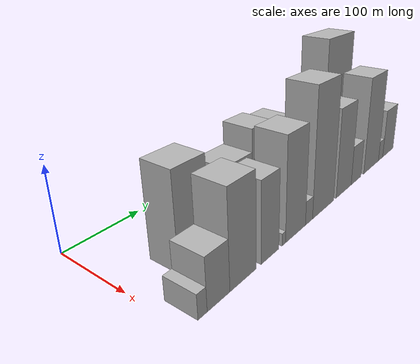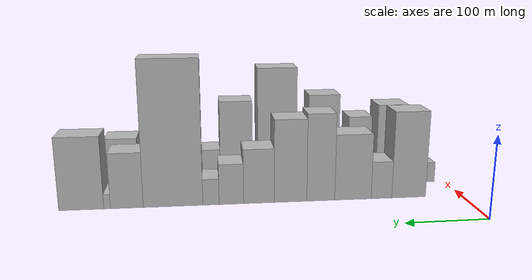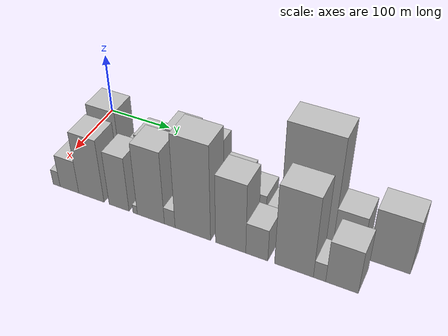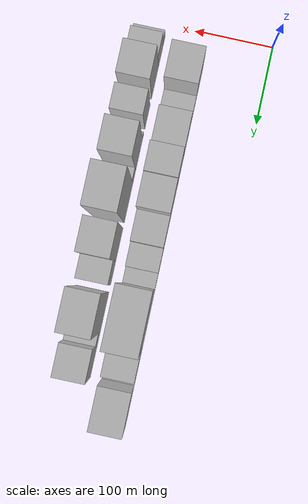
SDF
<sdf version="1.6">
 <world name="default">
  <model name="building_12">
   <static>1</static>
   <pose>100.0000 68.7548 0 0.000000 0.000000 0.000000</pose>
   <link name="link">
    <pose>0 0 55.50 0 0 0</pose>
    <collision name="collision"><geometry><box><size>40.0000 43.9248 111.0000</size></box></geometry></collision>
    <visual name="visual">
     <cast_shadows>0</cast_shadows>
     <geometry><box><size>40.0000 43.9248 111.0000</size></box></geometry>
     <material>
      <script>
       <uri>model://HANNAS_wall/materials/scripts</uri>
       <uri>model://HANNAS_wall/materials/textures</uri>
       <name>vrc/HANNAS_wall</name>
      </script>
     </material>
    </visual>
   </link>
  </model>
  <model name="building_13">
   <static>1</static>
   <pose>100.0000 103.9555 0 0.000000 0.000000 0.000000</pose>
   <link name="link">
    <pose>0 0 24.00 0 0 0</pose>
    <collision name="collision"><geometry><box><size>40.0000 26.4766 48.0000</size></box></geometry></collision>
    <visual name="visual">
     <cast_shadows>0</cast_shadows>
     <geometry><box><size>40.0000 26.4766 48.0000</size></box></geometry>
     <material>
      <script>
       <uri>model://HANNAS_wall/materials/scripts</uri>
       <uri>model://HANNAS_wall/materials/textures</uri>
       <name>vrc/HANNAS_wall</name>
      </script>
     </material>
    </visual>
   </link>
  </model>
  <model name="building_14">
   <static>1</static>
   <pose>100.0000 140.5373 0 0.000000 0.000000 0.000000</pose>
   <link name="link">
    <pose>0 0 42.00 0 0 0</pose>
    <collision name="collision"><geometry><box><size>40.0000 46.6870 84.0000</size></box></geometry></collision>
    <visual name="visual">
     <cast_shadows>0</cast_shadows>
     <geometry><box><size>40.0000 46.6870 84.0000</size></box></geometry>
     <material>
      <script>
       <uri>model://HANNAS_wall/materials/scripts</uri>
       <uri>model://HANNAS_wall/materials/textures</uri>
       <name>vrc/HANNAS_wall</name>
      </script>
     </material>
    </visual>
   </link>
  </model>
  <model name="building_15">
   <static>1</static>
   <pose>100.0000 181.5682 0 0.000000 0.000000 0.000000</pose>
   <link name="link">
    <pose>0 0 55.50 0 0 0</pose>
    <collision name="collision"><geometry><box><size>40.0000 35.3749 111.0000</size></box></geometry></collision>
    <visual name="visual">
     <cast_shadows>0</cast_shadows>
     <geometry><box><size>40.0000 35.3749 111.0000</size></box></geometry>
     <material>
      <script>
       <uri>model://HANNAS_wall/materials/scripts</uri>
       <uri>model://HANNAS_wall/materials/textures</uri>
       <name>vrc/HANNAS_wall</name>
      </script>
     </material>
    </visual>
   </link>
  </model>
  <model name="building_16">
   <static>1</static>
   <pose>100.0000 219.5520 0 0.000000 0.000000 0.000000</pose>
   <link name="link">
    <pose>0 0 52.50 0 0 0</pose>
    <collision name="collision"><geometry><box><size>40.0000 40.5926 105.0000</size></box></geometry></collision>
    <visual name="visual">
     <cast_shadows>0</cast_shadows>
     <geometry><box><size>40.0000 40.5926 105.0000</size></box></geometry>
     <material>
      <script>
       <uri>model://HANNAS_wall/materials/scripts</uri>
       <uri>model://HANNAS_wall/materials/textures</uri>
       <name>vrc/HANNAS_wall</name>
      </script>
     </material>
    </visual>
   </link>
  </model>
  <model name="building_17">
   <static>1</static>
   <pose>100.0000 258.8939 0 0.000000 0.000000 0.000000</pose>
   <link name="link">
    <pose>0 0 34.50 0 0 0</pose>
    <collision name="collision"><geometry><box><size>40.0000 38.0912 69.0000</size></box></geometry></collision>
    <visual name="visual">
     <cast_shadows>0</cast_shadows>
     <geometry><box><size>40.0000 38.0912 69.0000</size></box></geometry>
     <material>
      <script>
       <uri>model://HANNAS_wall/materials/scripts</uri>
       <uri>model://HANNAS_wall/materials/textures</uri>
       <name>vrc/HANNAS_wall</name>
      </script>
     </material>
    </visual>
   </link>
  </model>
  <model name="building_18">
   <static>1</static>
   <pose>100.0000 292.8784 0 0.000000 0.000000 0.000000</pose>
   <link name="link">
    <pose>0 0 25.50 0 0 0</pose>
    <collision name="collision"><geometry><box><size>40.0000 29.8777 51.0000</size></box></geometry></collision>
    <visual name="visual">
     <cast_shadows>0</cast_shadows>
     <geometry><box><size>40.0000 29.8777 51.0000</size></box></geometry>
     <material>
      <script>
       <uri>model://HANNAS_wall/materials/scripts</uri>
       <uri>model://HANNAS_wall/materials/textures</uri>
       <name>vrc/HANNAS_wall</name>
      </script>
     </material>
    </visual>
   </link>
  </model>
  <model name="building_19">
   <static>1</static>
   <pose>100.0000 317.6770 0 0.000000 0.000000 0.000000</pose>
   <link name="link">
    <pose>0 0 16.50 0 0 0</pose>
    <collision name="collision"><geometry><box><size>40.0000 19.7196 33.0000</size></box></geometry></collision>
    <visual name="visual">
     <cast_shadows>0</cast_shadows>
     <geometry><box><size>40.0000 19.7196 33.0000</size></box></geometry>
     <material>
      <script>
       <uri>model://HANNAS_wall/materials/scripts</uri>
       <uri>model://HANNAS_wall/materials/textures</uri>
       <name>vrc/HANNAS_wall</name>
      </script>
     </material>
    </visual>
   </link>
  </model>
  <model name="building_20">
   <static>1</static>
   <pose>100.0000 363.3611 0 0.000000 0.000000 0.000000</pose>
   <link name="link">
    <pose>0 0 90.00 0 0 0</pose>
    <collision name="collision"><geometry><box><size>40.0000 71.6485 180.0000</size></box></geometry></collision>
    <visual name="visual">
     <cast_shadows>0</cast_shadows>
     <geometry><box><size>40.0000 71.6485 180.0000</size></box></geometry>
     <material>
      <script>
       <uri>model://HANNAS_wall/materials/scripts</uri>
       <uri>model://HANNAS_wall/materials/textures</uri>
       <name>vrc/HANNAS_wall</name>
      </script>
     </material>
    </visual>
   </link>
  </model>
  <model name="building_21">
   <static>1</static>
   <pose>100.0000 418.6644 0 0.000000 0.000000 0.000000</pose>
   <link name="link">
    <pose>0 0 34.50 0 0 0</pose>
    <collision name="collision"><geometry><box><size>40.0000 38.9581 69.0000</size></box></geometry></collision>
    <visual name="visual">
     <cast_shadows>0</cast_shadows>
     <geometry><box><size>40.0000 38.9581 69.0000</size></box></geometry>
     <material>
      <script>
       <uri>model://HANNAS_wall/materials/scripts</uri>
       <uri>model://HANNAS_wall/materials/textures</uri>
       <name>vrc/HANNAS_wall</name>
      </script>
     </material>
    </visual>
   </link>
  </model>
  <model name="building_22">
   <static>1</static>
   <pose>100.0000 442.0077 0 0.000000 0.000000 0.000000</pose>
   <link name="link">
    <pose>0 0 9.00 0 0 0</pose>
    <collision name="collision"><geometry><box><size>40.0000 7.7286 18.0000</size></box></geometry></collision>
    <visual name="visual">
     <cast_shadows>0</cast_shadows>
     <geometry><box><size>40.0000 7.7286 18.0000</size></box></geometry>
     <material>
      <script>
       <uri>model://HANNAS_wall/materials/scripts</uri>
       <uri>model://HANNAS_wall/materials/textures</uri>
       <name>vrc/HANNAS_wall</name>
      </script>
     </material>
    </visual>
   </link>
  </model>
  <model name="building_23">
   <static>1</static>
   <pose>100.0000 472.1573 0 0.000000 0.000000 0.000000</pose>
   <link name="link">
    <pose>0 0 45.00 0 0 0</pose>
    <collision name="collision"><geometry><box><size>40.0000 52.5705 90.0000</size></box></geometry></collision>
    <visual name="visual">
     <cast_shadows>0</cast_shadows>
     <geometry><box><size>40.0000 52.5705 90.0000</size></box></geometry>
     <material>
      <script>
       <uri>model://HANNAS_wall/materials/scripts</uri>
       <uri>model://HANNAS_wall/materials/textures</uri>
       <name>vrc/HANNAS_wall</name>
      </script>
     </material>
    </visual>
   </link>
  </model>
  <model name="building_36">
   <static>1</static>
   <pose>155.0000 19.9528 0 0.000000 0.000000 0.000000</pose>
   <link name="link">
    <pose>0 0 13.50 0 0 0</pose>
    <collision name="collision"><geometry><box><size>40.0000 11.4931 27.0000</size></box></geometry></collision>
    <visual name="visual">
     <cast_shadows>0</cast_shadows>
     <geometry><box><size>40.0000 11.4931 27.0000</size></box></geometry>
     <material>
      <script>
       <uri>model://HANNAS_wall/materials/scripts</uri>
       <uri>model://HANNAS_wall/materials/textures</uri>
       <name>vrc/HANNAS_wall</name>
      </script>
     </material>
    </visual>
   </link>
  </model>
  <model name="building_37">
   <static>1</static>
   <pose>155.0000 40.9216 0 0.000000 0.000000 0.000000</pose>
   <link name="link">
    <pose>0 0 28.50 0 0 0</pose>
    <collision name="collision"><geometry><box><size>40.0000 30.4445 57.0000</size></box></geometry></collision>
    <visual name="visual">
     <cast_shadows>0</cast_shadows>
     <geometry><box><size>40.0000 30.4445 57.0000</size></box></geometry>
     <material>
      <script>
       <uri>model://HANNAS_wall/materials/scripts</uri>
       <uri>model://HANNAS_wall/materials/textures</uri>
       <name>vrc/HANNAS_wall</name>
      </script>
     </material>
    </visual>
   </link>
  </model>
  <model name="building_38">
   <static>1</static>
   <pose>155.0000 76.2373 0 0.000000 0.000000 0.000000</pose>
   <link name="link">
    <pose>0 0 54.00 0 0 0</pose>
    <collision name="collision"><geometry><box><size>40.0000 40.1870 108.0000</size></box></geometry></collision>
    <visual name="visual">
     <cast_shadows>0</cast_shadows>
     <geometry><box><size>40.0000 40.1870 108.0000</size></box></geometry>
     <material>
      <script>
       <uri>model://HANNAS_wall/materials/scripts</uri>
       <uri>model://HANNAS_wall/materials/textures</uri>
       <name>vrc/HANNAS_wall</name>
      </script>
     </material>
    </visual>
   </link>
  </model>
  <model name="building_39">
   <static>1</static>
   <pose>155.0000 119.8087 0 0.000000 0.000000 0.000000</pose>
   <link name="link">
    <pose>0 0 46.50 0 0 0</pose>
    <collision name="collision"><geometry><box><size>40.0000 30.9559 93.0000</size></box></geometry></collision>
    <visual name="visual">
     <cast_shadows>0</cast_shadows>
     <geometry><box><size>40.0000 30.9559 93.0000</size></box></geometry>
     <material>
      <script>
       <uri>model://HANNAS_wall/materials/scripts</uri>
       <uri>model://HANNAS_wall/materials/textures</uri>
       <name>vrc/HANNAS_wall</name>
      </script>
     </material>
    </visual>
   </link>
  </model>
  <model name="building_40">
   <static>1</static>
   <pose>155.0000 144.5600 0 0.000000 0.000000 0.000000</pose>
   <link name="link">
    <pose>0 0 7.50 0 0 0</pose>
    <collision name="collision"><geometry><box><size>40.0000 6.5467 15.0000</size></box></geometry></collision>
    <visual name="visual">
     <cast_shadows>0</cast_shadows>
     <geometry><box><size>40.0000 6.5467 15.0000</size></box></geometry>
     <material>
      <script>
       <uri>model://HANNAS_wall/materials/scripts</uri>
       <uri>model://HANNAS_wall/materials/textures</uri>
       <name>vrc/HANNAS_wall</name>
      </script>
     </material>
    </visual>
   </link>
  </model>
  <model name="building_41">
   <static>1</static>
   <pose>155.0000 168.2042 0 0.000000 0.000000 0.000000</pose>
   <link name="link">
    <pose>0 0 61.50 0 0 0</pose>
    <collision name="collision"><geometry><box><size>40.0000 40.7418 123.0000</size></box></geometry></collision>
    <visual name="visual">
     <cast_shadows>0</cast_shadows>
     <geometry><box><size>40.0000 40.7418 123.0000</size></box></geometry>
     <material>
      <script>
       <uri>model://HANNAS_wall/materials/scripts</uri>
       <uri>model://HANNAS_wall/materials/textures</uri>
       <name>vrc/HANNAS_wall</name>
      </script>
     </material>
    </visual>
   </link>
  </model>
  <model name="building_42">
   <static>1</static>
   <pose>155.0000 196.4175 0 0.000000 0.000000 0.000000</pose>
   <link name="link">
    <pose>0 0 15.00 0 0 0</pose>
    <collision name="collision"><geometry><box><size>40.0000 15.6848 30.0000</size></box></geometry></collision>
    <visual name="visual">
     <cast_shadows>0</cast_shadows>
     <geometry><box><size>40.0000 15.6848 30.0000</size></box></geometry>
     <material>
      <script>
       <uri>model://HANNAS_wall/materials/scripts</uri>
       <uri>model://HANNAS_wall/materials/textures</uri>
       <name>vrc/HANNAS_wall</name>
      </script>
     </material>
    </visual>
   </link>
  </model>
  <model name="building_43">
   <static>1</static>
   <pose>155.0000 229.8023 0 0.000000 0.000000 0.000000</pose>
   <link name="link">
    <pose>0 0 79.50 0 0 0</pose>
    <collision name="collision"><geometry><box><size>40.0000 51.0848 159.0000</size></box></geometry></collision>
    <visual name="visual">
     <cast_shadows>0</cast_shadows>
     <geometry><box><size>40.0000 51.0848 159.0000</size></box></geometry>
     <material>
      <script>
       <uri>model://HANNAS_wall/materials/scripts</uri>
       <uri>model://HANNAS_wall/materials/textures</uri>
       <name>vrc/HANNAS_wall</name>
      </script>
     </material>
    </visual>
   </link>
  </model>
  <model name="building_44">
   <static>1</static>
   <pose>155.0000 283.3261 0 0.000000 0.000000 0.000000</pose>
   <link name="link">
    <pose>0 0 58.50 0 0 0</pose>
    <collision name="collision"><geometry><box><size>40.0000 41.9628 117.0000</size></box></geometry></collision>
    <visual name="visual">
     <cast_shadows>0</cast_shadows>
     <geometry><box><size>40.0000 41.9628 117.0000</size></box></geometry>
     <material>
      <script>
       <uri>model://HANNAS_wall/materials/scripts</uri>
       <uri>model://HANNAS_wall/materials/textures</uri>
       <name>vrc/HANNAS_wall</name>
      </script>
     </material>
    </visual>
   </link>
  </model>
  <model name="building_45">
   <static>1</static>
   <pose>155.0000 319.2117 0 0.000000 0.000000 0.000000</pose>
   <link name="link">
    <pose>0 0 27.00 0 0 0</pose>
    <collision name="collision"><geometry><box><size>40.0000 29.8083 54.0000</size></box></geometry></collision>
    <visual name="visual">
     <cast_shadows>0</cast_shadows>
     <geometry><box><size>40.0000 29.8083 54.0000</size></box></geometry>
     <material>
      <script>
       <uri>model://HANNAS_wall/materials/scripts</uri>
       <uri>model://HANNAS_wall/materials/textures</uri>
       <name>vrc/HANNAS_wall</name>
      </script>
     </material>
    </visual>
   </link>
  </model>
  <model name="building_46">
   <static>1</static>
   <pose>155.0000 368.4703 0 0.000000 0.000000 0.000000</pose>
   <link name="link">
    <pose>0 0 67.50 0 0 0</pose>
    <collision name="collision"><geometry><box><size>40.0000 50.7090 135.0000</size></box></geometry></collision>
    <visual name="visual">
     <cast_shadows>0</cast_shadows>
     <geometry><box><size>40.0000 50.7090 135.0000</size></box></geometry>
     <material>
      <script>
       <uri>model://HANNAS_wall/materials/scripts</uri>
       <uri>model://HANNAS_wall/materials/textures</uri>
       <name>vrc/HANNAS_wall</name>
      </script>
     </material>
    </visual>
   </link>
  </model>
  <model name="building_47">
   <static>1</static>
   <pose>155.0000 401.6540 0 0.000000 0.000000 0.000000</pose>
   <link name="link">
    <pose>0 0 15.00 0 0 0</pose>
    <collision name="collision"><geometry><box><size>40.0000 15.6585 30.0000</size></box></geometry></collision>
    <visual name="visual">
     <cast_shadows>0</cast_shadows>
     <geometry><box><size>40.0000 15.6585 30.0000</size></box></geometry>
     <material>
      <script>
       <uri>model://HANNAS_wall/materials/scripts</uri>
       <uri>model://HANNAS_wall/materials/textures</uri>
       <name>vrc/HANNAS_wall</name>
      </script>
     </material>
    </visual>
   </link>
  </model>
  <model name="building_48">
   <static>1</static>
   <pose>155.0000 429.8889 0 0.000000 0.000000 0.000000</pose>
   <link name="link">
    <pose>0 0 36.00 0 0 0</pose>
    <collision name="collision"><geometry><box><size>40.0000 40.8112 72.0000</size></box></geometry></collision>
    <visual name="visual">
     <cast_shadows>0</cast_shadows>
     <geometry><box><size>40.0000 40.8112 72.0000</size></box></geometry>
     <material>
      <script>
       <uri>model://HANNAS_wall/materials/scripts</uri>
       <uri>model://HANNAS_wall/materials/textures</uri>
       <name>vrc/HANNAS_wall</name>
      </script>
     </material>
    </visual>
   </link>
  </model>
 </world>
</sdf>
